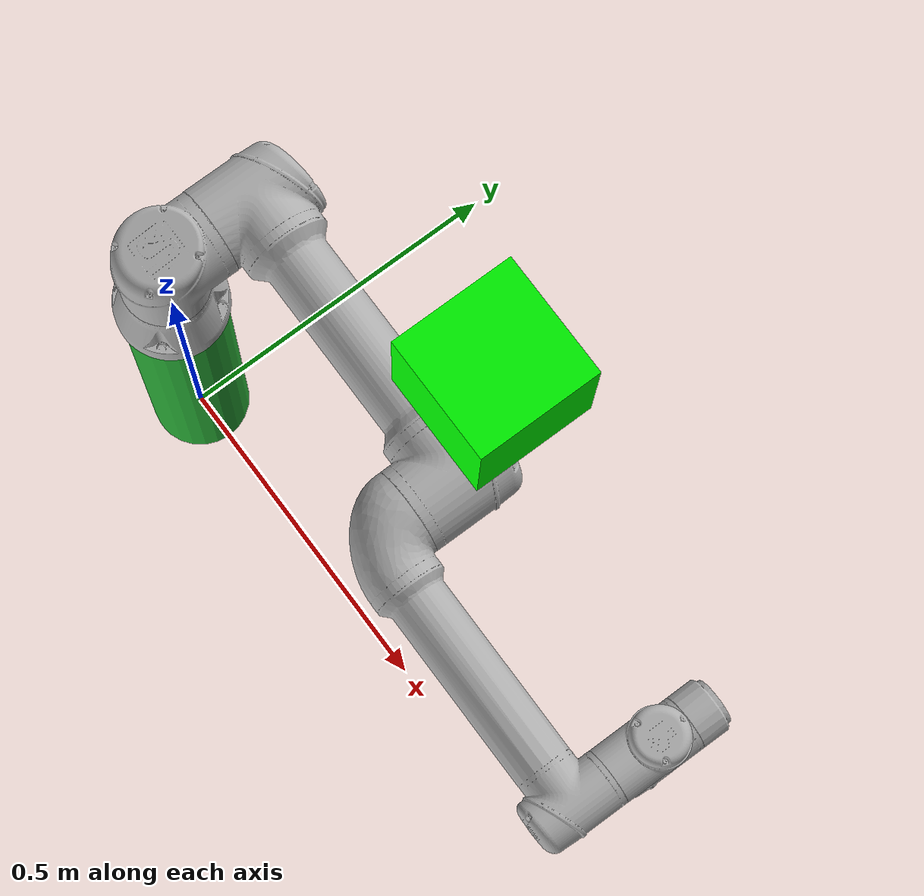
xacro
<?xml version="1.0"?>
<robot xmlns:xacro="http://ros.org/wiki/xacro"
       name="ur5e_robotiq" >

  <xacro:arg name="transmission_hw_interface" default="hardware_interface/PositionJointInterface"/>

  <!-- common stuff -->
  <xacro:include filename="$(find ur_e_description)/urdf/common.gazebo.xacro" />

  <!-- ur5e -->
  <xacro:include filename="$(find ur_e_description)/urdf/ur5e.urdf.xacro" />

  <!-- arm -->
  <xacro:arg name="kinematics_config" default="$(find ur_e_description)/config/ur5e_default.yaml"/>
  <xacro:ur5e_robot prefix="" joint_limited="true"
    shoulder_pan_lower_limit="${-pi}" shoulder_pan_upper_limit="${pi}"
    shoulder_lift_lower_limit="${-pi}" shoulder_lift_upper_limit="${pi}"
    elbow_joint_lower_limit="${-pi}" elbow_joint_upper_limit="${pi}"
    wrist_1_lower_limit="${-pi}" wrist_1_upper_limit="${pi}"
    wrist_2_lower_limit="${-pi}" wrist_2_upper_limit="${pi}"
    wrist_3_lower_limit="${-pi}" wrist_3_upper_limit="${pi}"
    transmission_hw_interface="$(arg transmission_hw_interface)"
    kinematics_file="${load_yaml('$(arg kinematics_config)')}"
  />

  <!-- Robotiq Coupler -->
  <!--  + Height added by the coupler: 8mm -->
  <!--  + Reference frame: at the middle (4mm) -->
      <!--origin xyz="2.073e-05   1.45286e-03  -1.1049e-03" rpy="0 0 0" /-->
    <!--origin xyz="0 0 0.004" rpy="0 0 ${pi}" /-->

  <!-- Attach the robotiq 85 gripper -->

  <!-- Gazebo FT sensor plugin -->

  <link name="world"/>
  <link name="pedestal_link">
    <inertial>
        <origin xyz="0.0 0.0 0.0" rpy="0.0 0.0 0.0"/>
        <mass value="44.391"/>
        <inertia ixx="3.739" ixy="0.0" ixz="1.393e-10" iyy="3.739" iyz="0.0" izz="0.08"/>
    </inertial>
    <visual>
        <origin xyz="0.0 0.0 0.0" rpy="0.0 0.0 0.0"/>
        <geometry>
            <cylinder radius="0.07" length="0.5"/>
        </geometry>
        <material name="green"/>
    </visual>
    <collision>
        <origin xyz="0.0 0.0 0.0" rpy="0.0 0.0 0.0"/>
        <geometry>
            <cylinder radius="0.07" length="0.5"/>
        </geometry>
    </collision>
  </link>

  <joint name="world_joint" type="fixed">
    <origin xyz="0.0 0.0 0.25"/>
    <parent link="world"/>
    <child link="pedestal_link"/>
  </joint>
  <joint name="pedestal_joint" type="fixed">
    <origin xyz="0.0 0.0 0.25"/>
    <parent link="pedestal_link"/>
    <child link="base_link"/>

  </joint>

  <joint name="camera_joint" type="fixed">
    <origin xyz="0.6 0.0 2.0" rpy="0.0 ${pi/2} ${pi/2}"/>
    <parent link="world"/>
    <child link="camera_link"/>
  </joint>

<link name="camera_link">
  <visual>
    <origin xyz="0.0 0.0 0.0" rpy="0.0 0.0 0.0"/>
    <geometry>
      <box size="0.1 0.1 0.1"/>
    </geometry>
    <material name="Cyan">
      <color rgba="0.0 1.0 0.0 1.0"/>
    </material>
  </visual>
  <collision>
    <origin xyz="0.0 0.0 0.0" rpy="0.0 0.0 0.0"/>
    <geometry>
      <box size="0.1 0.1 0.1"/>
    </geometry>
  </collision>
  <inertial>
    <origin xyz="0.0 0.0 0.0" rpy="0.0 0.0 0.0"/>
    <mass value="0.5"/>
    <inertia ixx="0.01" ixy="0.0" ixz="0.0" iyy="0.01" iyz="0.0" izz="0.01" />
  </inertial>
</link>
<gazebo reference="pedestal_link">
  <material>Gazebo/Green</material>
</gazebo>

<gazebo reference="camera_link">
  <material>Gazebo/Gray</material>
  <sensor type="camera" name="camera1">
      <update_rate>30.0</update_rate>
      <camera name="head">
          <horizontal_fov>1.3962634</horizontal_fov>
          <image>
          <width>640</width>
          <height>360</height>
          <format>R8G8B8</format>
          </image>
          <clip>
          <near>0.02</near>
          <far>300</far>
          </clip>
          <noise>
          <type>gaussian</type>
          <mean>0.0</mean>
          <stddev>0.007</stddev>
          </noise>
      </camera>
      <plugin name="camera_controller" filename="libgazebo_ros_camera.so">
          <alwaysOn>true</alwaysOn>
          <updateRate>0.0</updateRate>
          <cameraName>camera</cameraName>
          <imageTopicName>image_raw</imageTopicName>
          <cameraInfoTopicName>camera_info</cameraInfoTopicName>
          <frameName>camera_link</frameName>
          <hackBaseline>0.07</hackBaseline>
          <distortionK1>0.0</distortionK1>
          <distortionK2>0.0</distortionK2>
          <distortionK3>0.0</distortionK3>
          <distortionT1>0.0</distortionT1>
          <distortionT2>0.0</distortionT2>
      </plugin>
  </sensor>
</gazebo>

</robot>

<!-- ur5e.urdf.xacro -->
<robot xmlns:xacro="http://ros.org/wiki/xacro">

  <xacro:include filename="$(find ur_e_description)/urdf/ur.transmission.xacro" />
  <xacro:include filename="$(find ur_e_description)/urdf/ur.gazebo.xacro" />

  <xacro:macro name="cylinder_inertial" params="radius length mass *origin">
    <inertial>
      <mass value="${mass}" />
      <xacro:insert_block name="origin" />
      <inertia ixx="${0.0833333 * mass * (3 * radius * radius + length * length)}" ixy="0.0" ixz="0.0"
        iyy="${0.0833333 * mass * (3 * radius * radius + length * length)}" iyz="0.0"
        izz="${0.5 * mass * radius * radius}" />
    </inertial>
  </xacro:macro>

  <xacro:macro name="ur5e_robot" params="prefix joint_limited
    shoulder_pan_lower_limit:=${-pi}    shoulder_pan_upper_limit:=${pi}
    shoulder_lift_lower_limit:=${-pi}    shoulder_lift_upper_limit:=${pi}
    elbow_joint_lower_limit:=${-pi}    elbow_joint_upper_limit:=${pi}
    wrist_1_lower_limit:=${-pi}    wrist_1_upper_limit:=${pi}
    wrist_2_lower_limit:=${-pi}    wrist_2_upper_limit:=${pi}
    wrist_3_lower_limit:=${-pi}    wrist_3_upper_limit:=${pi}
    transmission_hw_interface:=hardware_interface/PositionJointInterface
    safety_limits:=false safety_pos_margin:=0.15
    safety_k_position:=20">

    <!-- Inertia parameters -->
    <xacro:property name="base_mass" value="4.0" />  <!-- This mass might be incorrect -->
    <xacro:property name="shoulder_mass" value="3.7000" />
    <xacro:property name="upper_arm_mass" value="8.3930" />
    <xacro:property name="forearm_mass" value="2.2750" />
    <xacro:property name="wrist_1_mass" value="1.2190" />
    <xacro:property name="wrist_2_mass" value="1.2190" />
    <xacro:property name="wrist_3_mass" value="0.1879" />

    <xacro:property name="shoulder_cog" value="0.0 0.00193 -0.02561" />
    <xacro:property name="upper_arm_cog" value="0.0 -0.024201 0.2125" />
    <xacro:property name="forearm_cog" value="0.0 0.0265 0.11993" />
    <xacro:property name="wrist_1_cog" value="0.0 0.110949 0.01634" />
    <xacro:property name="wrist_2_cog" value="0.0 0.0018 0.11099" />
    <xacro:property name="wrist_3_cog" value="0.0 0.001159 0.0" />

    <!-- Kinematic model -->
    <!-- Properties from urcontrol.conf -->
    <xacro:property name="d1" value="0.163" />
    <xacro:property name="a2" value="-0.425" />
    <xacro:property name="a3" value="-0.392" />
    <xacro:property name="d4" value="0.127" />
    <xacro:property name="d5" value="0.100" />
    <xacro:property name="d6" value="0.100" />

    <!-- Arbitrary offsets for shoulder/elbow joints -->
    <xacro:property name="shoulder_offset" value="0.138" />
    <xacro:property name="elbow_offset" value="-0.131" />

    <!-- link lengths used in model -->
    <xacro:property name="shoulder_height" value="${d1}" />
    <xacro:property name="upper_arm_length" value="${-a2}" />
    <xacro:property name="forearm_length" value="${-a3}" />
    <xacro:property name="wrist_1_length" value="${d4}" />
    <xacro:property name="wrist_2_length" value="${d5}" />
    <xacro:property name="wrist_3_length" value="${d6}" />
    <!--property name="shoulder_height" value="0.089159" /-->
    <!--property name="shoulder_offset" value="0.13585" /-->  <!-- shoulder_offset - elbow_offset + wrist_1_length = 0.10915 -->
    <!--property name="upper_arm_length" value="0.42500" /-->
    <!--property name="elbow_offset" value="0.1197" /-->       <!-- CAD measured -->
    <!--property name="forearm_length" value="0.39225" /-->
    <!--property name="wrist_1_length" value="0.093" /-->     <!-- CAD measured -->
    <!--property name="wrist_2_length" value="0.09465" /-->   <!-- In CAD this distance is 0.930, but in the spec it is 0.09465 -->
    <!--property name="wrist_3_length" value="0.0823" /-->

    <xacro:property name="shoulder_radius" value="0.060" />   <!-- manually measured -->
    <xacro:property name="upper_arm_radius" value="0.054" />  <!-- manually measured -->
    <xacro:property name="elbow_radius" value="0.060" />      <!-- manually measured -->
    <xacro:property name="forearm_radius" value="0.040" />    <!-- manually measured -->
    <xacro:property name="wrist_radius" value="0.045" />      <!-- manually measured -->

    <link name="${prefix}base_link" >
      <visual>
        <geometry>
          <mesh filename="package://ur_e_description/meshes/ur5e/visual/base.dae" />
        </geometry>
        <material name="LightGrey">
          <color rgba="0.7 0.7 0.7 1.0"/>
        </material>
      </visual>
      <collision>
        <geometry>
          <mesh filename="package://ur_e_description/meshes/ur5e/collision/base.stl" />
        </geometry>
      </collision>
      <xacro:cylinder_inertial radius="0.06" length="0.05" mass="${base_mass}">
        <origin xyz="0.0 0.0 0.0" rpy="0 0 0" />
      </xacro:cylinder_inertial>
    </link>

    <joint name="${prefix}shoulder_pan_joint" type="revolute">
      <parent link="${prefix}base_link" />
      <child link = "${prefix}shoulder_link" />
      <origin xyz="0.0 0.0 ${shoulder_height}" rpy="0.0 0.0 0.0" />
      <axis xyz="0 0 1" />
      <xacro:unless value="${joint_limited}">
        <limit lower="${-2.0 * pi}" upper="${2.0 * pi}" effort="150.0" velocity="3.14"/>
        <xacro:if value="${safety_limits}">
          <safety_controller soft_lower_limit="${-2.0 * pi + safety_pos_margin}" soft_upper_limit="${2.0 * pi - safety_pos_margin}" k_position="${safety_k_position}" k_velocity="0.0"/>
        </xacro:if>
      </xacro:unless>
      <xacro:if value="${joint_limited}">
        <limit lower="${shoulder_pan_lower_limit}" upper="${shoulder_pan_upper_limit}" effort="150.0" velocity="3.14"/>
        <xacro:if value="${safety_limits}">
          <safety_controller soft_lower_limit="${shoulder_pan_lower_limit + safety_pos_margin}" soft_upper_limit="${shoulder_pan_upper_limit - safety_pos_margin}" k_position="${safety_k_position}" k_velocity="0.0"/>
        </xacro:if>
      </xacro:if>
      <dynamics damping="0.0" friction="0.0"/>
    </joint>

    <link name="${prefix}shoulder_link">
      <visual>
        <geometry>
          <mesh filename="package://ur_e_description/meshes/ur5e/visual/shoulder.dae" />
        </geometry>
        <material name="LightGrey">
          <color rgba="0.7 0.7 0.7 1.0"/>
        </material>
      </visual>
      <collision>
        <geometry>
          <mesh filename="package://ur_e_description/meshes/ur5e/collision/shoulder.stl" />
        </geometry>
      </collision>
      <xacro:cylinder_inertial radius="0.06" length="0.15" mass="${shoulder_mass}">
        <origin xyz="0.0 0.0 0.0" rpy="0 0 0" />
      </xacro:cylinder_inertial>
    </link>

    <joint name="${prefix}shoulder_lift_joint" type="revolute">
      <parent link="${prefix}shoulder_link" />
      <child link = "${prefix}upper_arm_link" />
      <origin xyz="0.0 ${shoulder_offset} 0.0" rpy="0.0 ${pi / 2.0} 0.0" />
      <axis xyz="0 1 0" />
      <xacro:unless value="${joint_limited}">
        <limit lower="${-2.0 * pi}" upper="${2.0 * pi}" effort="150.0" velocity="3.14"/>
        <xacro:if value="${safety_limits}">
          <safety_controller soft_lower_limit="${-2.0 * pi + safety_pos_margin}" soft_upper_limit="${2.0 * pi - safety_pos_margin}" k_position="${safety_k_position}" k_velocity="0.0"/>
        </xacro:if>
      </xacro:unless>
      <xacro:if value="${joint_limited}">
        <limit lower="${shoulder_lift_lower_limit}" upper="${shoulder_lift_upper_limit}" effort="150.0" velocity="3.14"/>
        <xacro:if value="${safety_limits}">
          <safety_controller soft_lower_limit="${shoulder_lift_lower_limit + safety_pos_margin}" soft_upper_limit="${shoulder_lift_upper_limit - safety_pos_margin}" k_position="${safety_k_position}" k_velocity="0.0"/>
        </xacro:if>
      </xacro:if>
      <dynamics damping="0.0" friction="0.0"/>
    </joint>

    <link name="${prefix}upper_arm_link">
      <visual>
        <geometry>
          <mesh filename="package://ur_e_description/meshes/ur5e/visual/upperarm.dae" />
        </geometry>
        <material name="LightGrey">
          <color rgba="0.7 0.7 0.7 1.0"/>
        </material>
      </visual>
      <collision>
        <geometry>
          <mesh filename="package://ur_e_description/meshes/ur5e/collision/upperarm.stl" />
        </geometry>
      </collision>
      <xacro:cylinder_inertial radius="0.06" length="${upper_arm_length}" mass="${upper_arm_mass}">
        <origin xyz="0.0 0.0 ${upper_arm_length/2}" rpy="0 0 0" />
      </xacro:cylinder_inertial>
    </link>

    <joint name="${prefix}elbow_joint" type="revolute">
      <parent link="${prefix}upper_arm_link" />
      <child link = "${prefix}forearm_link" />
      <origin xyz="0.0 ${elbow_offset} ${upper_arm_length}" rpy="0.0 0.0 0.0" />
      <axis xyz="0 1 0" />
      <xacro:unless value="${joint_limited}">
        <limit lower="${-pi}" upper="${pi}" effort="150.0" velocity="3.14"/>
        <xacro:if value="${safety_limits}">
          <safety_controller soft_lower_limit="${-2.0 * pi + safety_pos_margin}" soft_upper_limit="${2.0 * pi - safety_pos_margin}" k_position="${safety_k_position}" k_velocity="0.0"/>
        </xacro:if>
      </xacro:unless>
      <xacro:if value="${joint_limited}">
        <limit lower="${elbow_joint_lower_limit}" upper="${elbow_joint_upper_limit}" effort="150.0" velocity="3.14"/>
        <xacro:if value="${safety_limits}">
          <safety_controller soft_lower_limit="${elbow_joint_lower_limit + safety_pos_margin}" soft_upper_limit="${elbow_joint_upper_limit - safety_pos_margin}" k_position="${safety_k_position}" k_velocity="0.0"/>
        </xacro:if>
      </xacro:if>
      <dynamics damping="0.0" friction="0.0"/>
    </joint>

    <link name="${prefix}forearm_link">
      <visual>
        <geometry>
          <mesh filename="package://ur_e_description/meshes/ur5e/visual/forearm.dae" />
        </geometry>
        <material name="LightGrey">
          <color rgba="0.7 0.7 0.7 1.0"/>
        </material>
      </visual>
      <collision>
        <geometry>
          <mesh filename="package://ur_e_description/meshes/ur5e/collision/forearm.stl" />
        </geometry>
      </collision>
      <xacro:cylinder_inertial radius="0.06" length="${forearm_length}" mass="${forearm_mass}">
        <origin xyz="0.0 0.0 ${forearm_length/2}" rpy="0 0 0" />
      </xacro:cylinder_inertial>
    </link>

    <joint name="${prefix}wrist_1_joint" type="revolute">
      <parent link="${prefix}forearm_link" />
      <child link = "${prefix}wrist_1_link" />
      <origin xyz="0.0 0.0 ${forearm_length}" rpy="0.0 ${pi / 2.0} 0.0" />
      <axis xyz="0 1 0" />
      <xacro:unless value="${joint_limited}">
        <limit lower="${-2.0 * pi}" upper="${2.0 * pi}" effort="28.0" velocity="6.28"/>
        <xacro:if value="${safety_limits}">
          <safety_controller soft_lower_limit="${-2.0 * pi + safety_pos_margin}" soft_upper_limit="${2.0 * pi - safety_pos_margin}" k_position="${safety_k_position}" k_velocity="0.0"/>
        </xacro:if>
      </xacro:unless>
      <xacro:if value="${joint_limited}">
        <limit lower="${wrist_1_lower_limit}" upper="${wrist_1_upper_limit}" effort="28.0" velocity="6.28"/>
        <xacro:if value="${safety_limits}">
          <safety_controller soft_lower_limit="${wrist_1_lower_limit + safety_pos_margin}" soft_upper_limit="${wrist_1_upper_limit - safety_pos_margin}" k_position="${safety_k_position}" k_velocity="0.0"/>
        </xacro:if>
      </xacro:if>
      <dynamics damping="0.0" friction="0.0"/>
    </joint>

    <link name="${prefix}wrist_1_link">
      <visual>
        <geometry>
          <mesh filename="package://ur_e_description/meshes/ur5e/visual/wrist1.dae" />
        </geometry>
        <material name="LightGrey">
          <color rgba="0.7 0.7 0.7 1.0"/>
        </material>
      </visual>
      <collision>
        <geometry>
          <mesh filename="package://ur_e_description/meshes/ur5e/collision/wrist1.stl" />
        </geometry>
      </collision>
      <xacro:cylinder_inertial radius="0.06" length="0.12" mass="${wrist_1_mass}">
        <origin xyz="0.0 ${wrist_1_length} 0.0" rpy="0 0 0" />
      </xacro:cylinder_inertial>
    </link>

    <joint name="${prefix}wrist_2_joint" type="revolute">
      <parent link="${prefix}wrist_1_link" />
      <child link = "${prefix}wrist_2_link" />
      <origin xyz="0.0 ${wrist_1_length} 0.0" rpy="0.0 0.0 0.0" />
      <axis xyz="0 0 1" />
      <xacro:unless value="${joint_limited}">
        <limit lower="${-2.0 * pi}" upper="${2.0 * pi}" effort="28.0" velocity="6.28"/>
        <xacro:if value="${safety_limits}">
          <safety_controller soft_lower_limit="${-2.0 * pi + safety_pos_margin}" soft_upper_limit="${2.0 * pi - safety_pos_margin}" k_position="${safety_k_position}" k_velocity="0.0"/>
        </xacro:if>
      </xacro:unless>
      <xacro:if value="${joint_limited}">
        <limit lower="${wrist_2_lower_limit}" upper="${wrist_2_upper_limit}" effort="28.0" velocity="6.28"/>
        <xacro:if value="${safety_limits}">
          <safety_controller soft_lower_limit="${wrist_2_lower_limit + safety_pos_margin}" soft_upper_limit="${wrist_2_upper_limit - safety_pos_margin}" k_position="${safety_k_position}" k_velocity="0.0"/>
        </xacro:if>
      </xacro:if>
      <dynamics damping="0.0" friction="0.0"/>
    </joint>

    <link name="${prefix}wrist_2_link">
      <visual>
        <geometry>
          <mesh filename="package://ur_e_description/meshes/ur5e/visual/wrist2.dae" />
        </geometry>
        <material name="LightGrey">
          <color rgba="0.7 0.7 0.7 1.0"/>
        </material>
      </visual>
      <collision>
        <geometry>
          <mesh filename="package://ur_e_description/meshes/ur5e/collision/wrist2.stl" />
        </geometry>
      </collision>
      <xacro:cylinder_inertial radius="0.06" length="0.12" mass="${wrist_2_mass}">
        <origin xyz="0.0 0.0 ${wrist_2_length}" rpy="0 0 0" />
      </xacro:cylinder_inertial>
    </link>

    <joint name="${prefix}wrist_3_joint" type="revolute">
      <parent link="${prefix}wrist_2_link" />
      <child link = "${prefix}wrist_3_link" />
      <origin xyz="0.0 0.0 ${wrist_2_length}" rpy="0.0 0.0 0.0" />
      <axis xyz="0 1 0" />
      <xacro:unless value="${joint_limited}">
        <limit lower="${-2.0 * pi}" upper="${2.0 * pi}" effort="28.0" velocity="6.28"/>
        <xacro:if value="${safety_limits}">
          <safety_controller soft_lower_limit="${-2.0 * pi + safety_pos_margin}" soft_upper_limit="${2.0 * pi - safety_pos_margin}" k_position="${safety_k_position}" k_velocity="0.0"/>
        </xacro:if>
      </xacro:unless>
      <xacro:if value="${joint_limited}">
        <limit lower="${wrist_3_lower_limit}" upper="${wrist_3_upper_limit}" effort="28.0" velocity="6.28"/>
        <xacro:if value="${safety_limits}">
          <safety_controller soft_lower_limit="${wrist_3_lower_limit + safety_pos_margin}" soft_upper_limit="${wrist_3_upper_limit - safety_pos_margin}" k_position="${safety_k_position}" k_velocity="0.0"/>
        </xacro:if>
      </xacro:if>
      <dynamics damping="0.0" friction="0.0"/>
    </joint>

    <link name="${prefix}wrist_3_link">
      <visual>
        <geometry>
          <mesh filename="package://ur_e_description/meshes/ur5e/visual/wrist3.dae" />
        </geometry>
        <material name="LightGrey">
          <color rgba="0.7 0.7 0.7 1.0"/>
        </material>
      </visual>
      <collision>
        <geometry>
          <mesh filename="package://ur_e_description/meshes/ur5e/collision/wrist3.stl" />
        </geometry>
      </collision>
      <xacro:cylinder_inertial radius="0.0375" length="0.0458" mass="${wrist_3_mass}">
        <origin xyz="0.0 ${wrist_3_length - 0.0458/2} 0.0" rpy="${pi/2} 0 0" />
      </xacro:cylinder_inertial>
    </link>

    <joint name="${prefix}ee_fixed_joint" type="fixed">
      <parent link="${prefix}wrist_3_link" />
      <child link = "${prefix}ee_link" />
      <origin xyz="0.0 ${wrist_3_length} 0.0" rpy="0.0 0.0 ${pi/2.0}" />
    </joint>

    <link name="${prefix}ee_link">
      <collision>
        <geometry>
          <box size="0.01 0.01 0.01"/>
        </geometry>
        <origin rpy="0 0 0" xyz="-0.01 0 0"/>
      </collision>
    </link>

    <xacro:ur_arm_transmission prefix="${prefix}" />
    <xacro:ur_arm_gazebo prefix="${prefix}" />

    <!-- ROS base_link to UR 'Base' Coordinates transform -->
    <link name="${prefix}base"/>
    <joint name="${prefix}base_link-base_fixed_joint" type="fixed">
      <!-- NOTE: this rotation is only needed as long as base_link itself is
                 not corrected wrt the real robot (ie: rotated over 180
                 degrees)
      -->
      <origin xyz="0 0 0" rpy="0 0 ${-pi}"/>
      <parent link="${prefix}base_link"/>
      <child link="${prefix}base"/>
    </joint>

    <!-- Frame coincident with all-zeros TCP on UR controller -->
    <link name="${prefix}tool0"/>
    <joint name="${prefix}wrist_3_link-tool0_fixed_joint" type="fixed">
      <origin xyz="0 ${wrist_3_length} 0" rpy="${pi/-2.0} 0 0"/>
      <parent link="${prefix}wrist_3_link"/>
      <child link="${prefix}tool0"/>
    </joint>

  </xacro:macro>
</robot>
